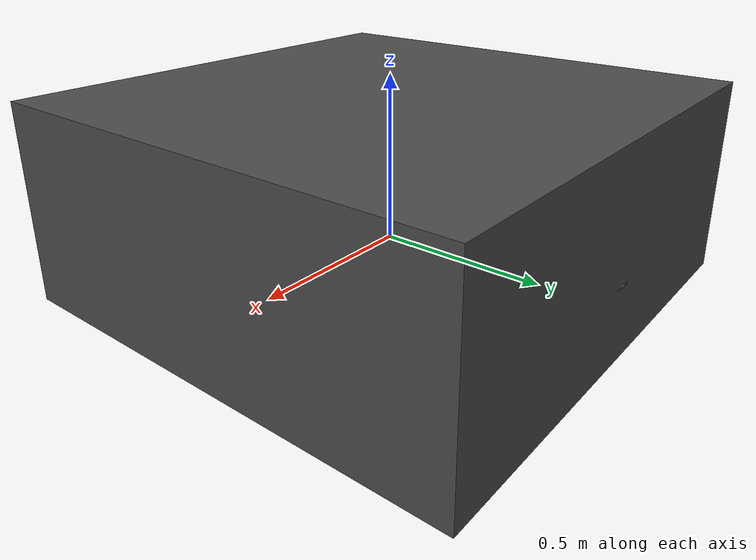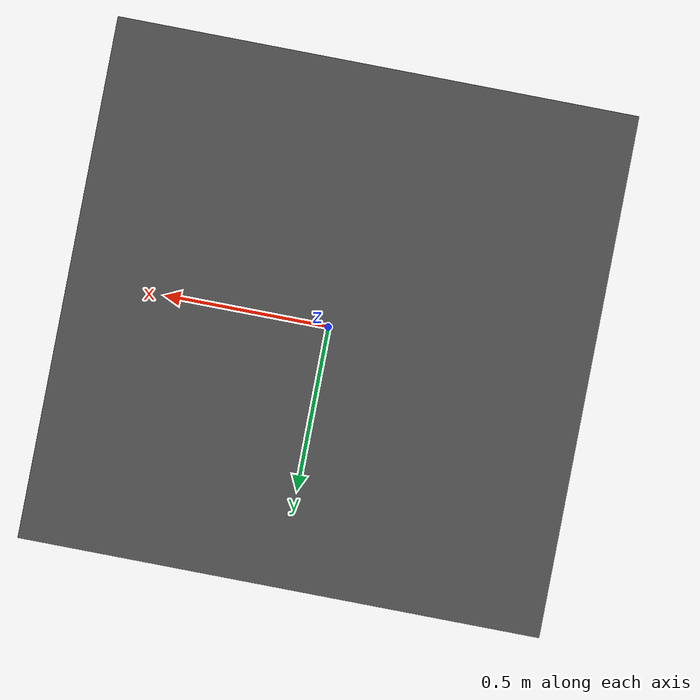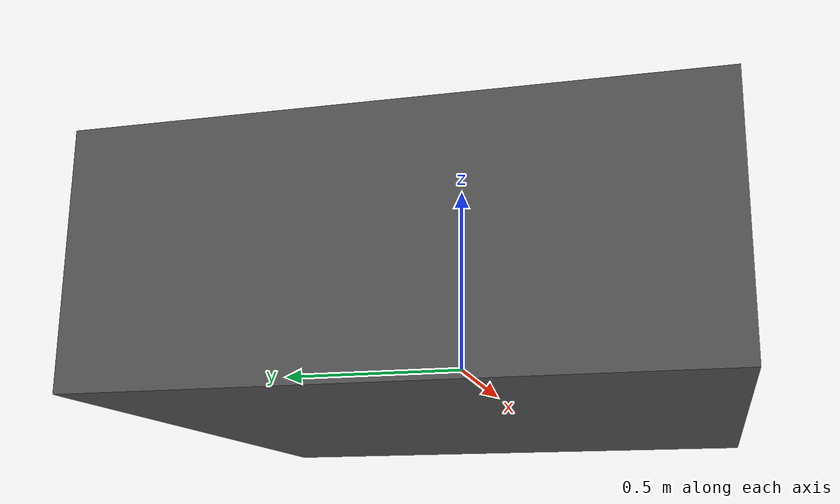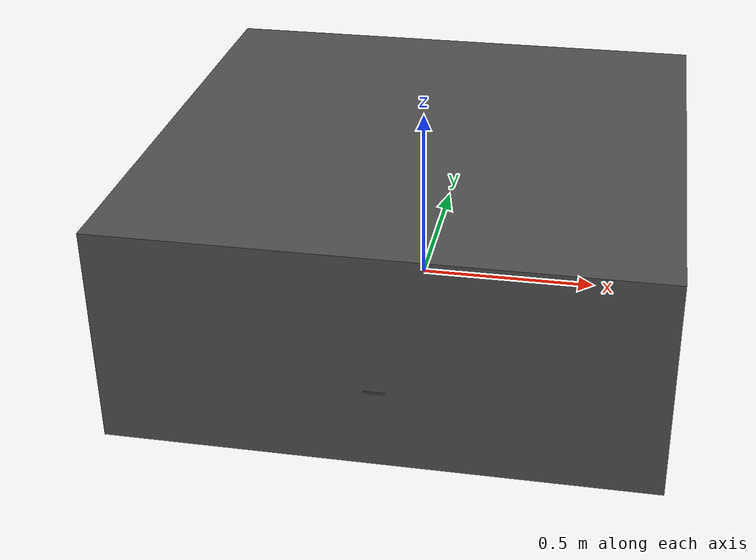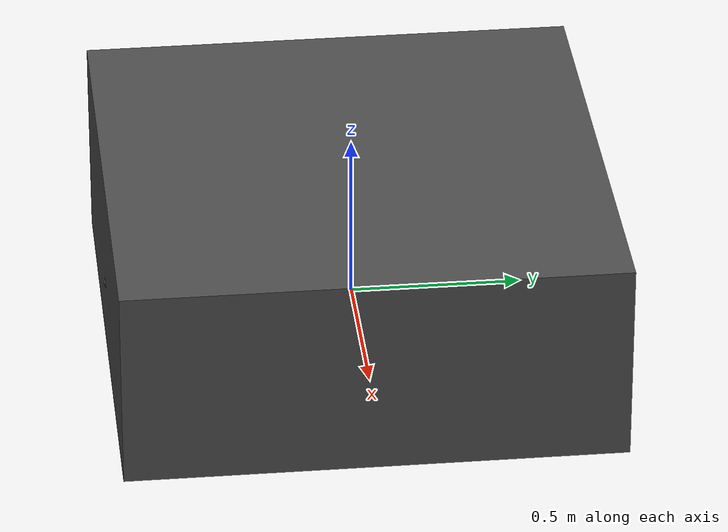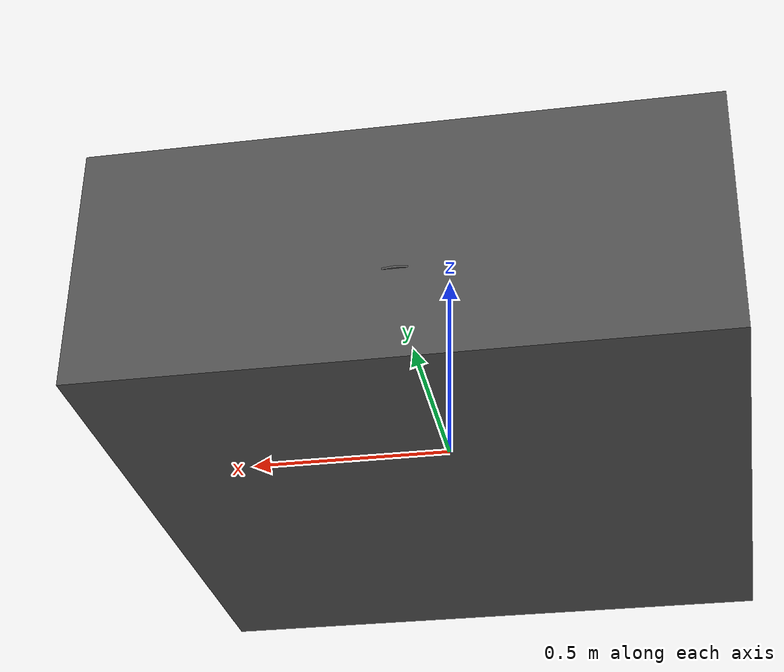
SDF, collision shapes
<?xml version='1.0'?>
<sdf version='1.7'>
  <model name='X6100'>
    <link name='base_link'>
      <inertial>
        <mass>9</mass>
        <inertia>
          <ixx>0.265865</ixx>
          <ixy>0</ixy>
          <ixz>0</ixz>
          <iyy>0.262636</iyy>
          <iyz>0</iyz>
          <izz>0.31363</izz>
        </inertia>
        <pose>0 0 0 0 -0 0</pose>
      </inertial>
      <pose>0 0 0 0 -0 0</pose>
      <gravity>1</gravity>
      <self_collide>0</self_collide>
      <enable_wind>0</enable_wind>
      <kinematic>0</kinematic>
      <visual name='base_link_visual'>
        <pose>0 0 0 0 -0 0</pose>
        <geometry>
          <mesh>
            <uri>/home/tmk/stalya/autopilot/public/px4-core/Tools/simulation/gazebo-classic/sitl_gazebo-classic/models/x6100/meshes/x6100_body.stl</uri>
            <scale>1 1 1</scale>
          </mesh>
        </geometry>
        <material>
          <script>
            <uri>file://media/materials/scripts/gazebo.material</uri>
            <name>Gazebo/DarkGrey</name>
          </script>
          <shader type='pixel'>
            <normal_map>__default__</normal_map>
          </shader>
          <lighting>1</lighting>
          <emissive>0.18 0.204 0.212 1</emissive>
          <ambient>0.18 0.204 0.212 1</ambient>
          <diffuse>0.18 0.204 0.212 1</diffuse>
          <specular>0.18 0.204 0.212 1</specular>
        </material>
        <transparency>0</transparency>
        <cast_shadows>1</cast_shadows>
      </visual>
      <collision name='base_link_collision'>
        <laser_retro>0</laser_retro>
        <max_contacts>10</max_contacts>
        <pose>0 0 0.15 0 -0 0</pose>
        <geometry>
          <box>
            <size>1.45 1.45 0.6</size>
          </box>
        </geometry>
        <surface>
          <friction>
            <ode>
              <mu>1</mu>
              <mu2>1</mu2>
              <fdir1>0 0 0</fdir1>
              <slip1>0</slip1>
              <slip2>0</slip2>
            </ode>
            <torsional>
              <coefficient>1</coefficient>
              <patch_radius>0</patch_radius>
              <surface_radius>0</surface_radius>
              <use_patch_radius>1</use_patch_radius>
              <ode>
                <slip>0</slip>
              </ode>
            </torsional>
          </friction>
          <bounce>
            <restitution_coefficient>0</restitution_coefficient>
            <threshold>1e+06</threshold>
          </bounce>
          <contact>
            <collide_without_contact>0</collide_without_contact>
            <collide_without_contact_bitmask>1</collide_without_contact_bitmask>
            <collide_bitmask>1</collide_bitmask>
            <ode>
              <soft_cfm>0</soft_cfm>
              <soft_erp>0.2</soft_erp>
              <kp>1e+13</kp>
              <kd>1</kd>
              <max_vel>0</max_vel>
              <min_depth>0.001</min_depth>
            </ode>
            <bullet>
              <split_impulse>1</split_impulse>
              <split_impulse_penetration_threshold>-0.01</split_impulse_penetration_threshold>
              <soft_cfm>0</soft_cfm>
              <soft_erp>0.2</soft_erp>
              <kp>1e+13</kp>
              <kd>1</kd>
            </bullet>
          </contact>
        </surface>
      </collision>
    </link>
    <link name='gps::link'>
      <pose>0 0 0 0 -0 0</pose>
      <inertial>
        <pose>0 0 0 0 -0 0</pose>
        <mass>0.015</mass>
        <inertia>
          <ixx>1e-05</ixx>
          <ixy>0</ixy>
          <ixz>0</ixz>
          <iyy>1e-05</iyy>
          <iyz>0</iyz>
          <izz>1e-05</izz>
        </inertia>
      </inertial>
      <sensor name='gps' type='gps'>
        <pose>0 0 0 0 -0 0</pose>
        <update_rate>5</update_rate>
        <always_on>1</always_on>
        <visualize>0</visualize>
        <plugin name='gps_plugin' filename='libgazebo_gps_plugin.so'>
          <robotNamespace/>
          <gpsNoise>1</gpsNoise>
          <gpsXYRandomWalk>2.0</gpsXYRandomWalk>
          <gpsZRandomWalk>4.0</gpsZRandomWalk>
          <gpsXYNoiseDensity>2.0e-4</gpsXYNoiseDensity>
          <gpsZNoiseDensity>4.0e-4</gpsZNoiseDensity>
          <gpsVXYNoiseDensity>0.2</gpsVXYNoiseDensity>
          <gpsVZNoiseDensity>0.4</gpsVZNoiseDensity>
        </plugin>
        <gps/>
      </sensor>
      <self_collide>0</self_collide>
      <enable_wind>0</enable_wind>
      <kinematic>0</kinematic>
      <visual name='visual'>
        <geometry>
          <cylinder>
            <radius>0.01</radius>
            <length>0.002</length>
          </cylinder>
        </geometry>
        <material>
          <script>
            <name>Gazebo/Black</name>
            <uri>__default__</uri>
          </script>
          <shader type='pixel'/>
        </material>
        <pose>0 0 0 0 -0 0</pose>
        <transparency>0</transparency>
        <cast_shadows>1</cast_shadows>
      </visual>
    </link>
    <link name='rotor_0'>
      <inertial>
        <mass>0.048</mass>
        <inertia>
          <ixx>6.5e-07</ixx>
          <ixy>0</ixy>
          <ixz>0</ixz>
          <iyy>0.00022348</iyy>
          <iyz>0</iyz>
          <izz>0.00022402</izz>
        </inertia>
        <pose>0 0 0 0 -0 0</pose>
      </inertial>
      <pose>0 -0.500335 0.07 0 -0 0</pose>
      <gravity>1</gravity>
      <self_collide>0</self_collide>
      <enable_wind>0</enable_wind>
      <kinematic>0</kinematic>
      <visual name='rotor_0_visual'>
        <pose>0 0 0 0 -0 0</pose>
        <geometry>
          <mesh>
            <uri>/home/tmk/stalya/autopilot/public/px4-core/Tools/simulation/gazebo-classic/sitl_gazebo-classic/models/x6100/meshes/x6100_prop1.stl</uri>
            <scale>1 1 1</scale>
          </mesh>
        </geometry>
        <material>
          <script>
            <uri>file://media/materials/scripts/gazebo.material</uri>
            <name>Gazebo/DarkGrey</name>
          </script>
          <shader type='vertex'>
            <normal_map>__default__</normal_map>
          </shader>
          <lighting>1</lighting>
          <emissive>0 0 0 1</emissive>
          <ambient>0 0 0 1</ambient>
          <diffuse>0 0 0 1</diffuse>
          <specular>0 0 0 1</specular>
        </material>
        <transparency>0</transparency>
        <cast_shadows>1</cast_shadows>
      </visual>
      <collision name='rotor_0_collision'>
        <laser_retro>0</laser_retro>
        <max_contacts>10</max_contacts>
        <pose>0 0 0 0 -0 0</pose>
        <geometry>
          <cylinder>
            <radius>0.2285</radius>
            <length>0.005</length>
          </cylinder>
        </geometry>
        <surface>
          <friction>
            <ode>
              <mu>1</mu>
              <mu2>1</mu2>
              <fdir1>0 0 0</fdir1>
              <slip1>0</slip1>
              <slip2>0</slip2>
            </ode>
            <torsional>
              <coefficient>1</coefficient>
              <patch_radius>0</patch_radius>
              <surface_radius>0</surface_radius>
              <use_patch_radius>1</use_patch_radius>
              <ode>
                <slip>0</slip>
              </ode>
            </torsional>
          </friction>
          <bounce>
            <restitution_coefficient>0</restitution_coefficient>
            <threshold>1e+06</threshold>
          </bounce>
          <contact>
            <collide_without_contact>0</collide_without_contact>
            <collide_without_contact_bitmask>1</collide_without_contact_bitmask>
            <collide_bitmask>1</collide_bitmask>
            <ode>
              <soft_cfm>0</soft_cfm>
              <soft_erp>0.2</soft_erp>
              <kp>1e+13</kp>
              <kd>1</kd>
              <max_vel>0</max_vel>
              <min_depth>0.001</min_depth>
            </ode>
            <bullet>
              <split_impulse>1</split_impulse>
              <split_impulse_penetration_threshold>-0.01</split_impulse_penetration_threshold>
              <soft_cfm>0</soft_cfm>
              <soft_erp>0.2</soft_erp>
              <kp>1e+13</kp>
              <kd>1</kd>
            </bullet>
          </contact>
        </surface>
      </collision>
    </link>
    <link name='rotor_1'>
      <inertial>
        <mass>0.048</mass>
        <inertia>
          <ixx>6.5e-07</ixx>
          <ixy>0</ixy>
          <ixz>0</ixz>
          <iyy>0.00022348</iyy>
          <iyz>0</iyz>
          <izz>0.00022402</izz>
        </inertia>
        <pose>0 0 0 0 -0 0</pose>
      </inertial>
      <pose>0 0.500335 0.07 0 -0 0</pose>
      <gravity>1</gravity>
      <self_collide>0</self_collide>
      <enable_wind>0</enable_wind>
      <kinematic>0</kinematic>
      <visual name='rotor_1_visual'>
        <pose>0 0 0 0 -0 0</pose>
        <geometry>
          <mesh>
            <uri>/home/tmk/stalya/autopilot/public/px4-core/Tools/simulation/gazebo-classic/sitl_gazebo-classic/models/x6100/meshes/x6100_prop2.stl</uri>
            <scale>1 1 1</scale>
          </mesh>
        </geometry>
        <material>
          <script>
            <uri>file://media/materials/scripts/gazebo.material</uri>
            <name>Gazebo/DarkGrey</name>
          </script>
          <shader type='vertex'>
            <normal_map>__default__</normal_map>
          </shader>
          <lighting>1</lighting>
          <emissive>0 0 0 1</emissive>
          <ambient>0 0 0 1</ambient>
          <diffuse>0 0 0 1</diffuse>
          <specular>0 0 0 1</specular>
        </material>
        <transparency>0</transparency>
        <cast_shadows>1</cast_shadows>
      </visual>
      <collision name='rotor_1_collision'>
        <laser_retro>0</laser_retro>
        <max_contacts>10</max_contacts>
        <pose>0 0 0 0 -0 0</pose>
        <geometry>
          <cylinder>
            <radius>0.2285</radius>
            <length>0.005</length>
          </cylinder>
        </geometry>
        <surface>
          <friction>
            <ode>
              <mu>1</mu>
              <mu2>1</mu2>
              <fdir1>0 0 0</fdir1>
              <slip1>0</slip1>
              <slip2>0</slip2>
            </ode>
            <torsional>
              <coefficient>1</coefficient>
              <patch_radius>0</patch_radius>
              <surface_radius>0</surface_radius>
              <use_patch_radius>1</use_patch_radius>
              <ode>
                <slip>0</slip>
              </ode>
            </torsional>
          </friction>
          <bounce>
            <restitution_coefficient>0</restitution_coefficient>
            <threshold>1e+06</threshold>
          </bounce>
          <contact>
            <collide_without_contact>0</collide_without_contact>
            <collide_without_contact_bitmask>1</collide_without_contact_bitmask>
            <collide_bitmask>1</collide_bitmask>
            <ode>
              <soft_cfm>0</soft_cfm>
              <soft_erp>0.2</soft_erp>
              <kp>1e+13</kp>
              <kd>1</kd>
              <max_vel>0</max_vel>
              <min_depth>0.001</min_depth>
            </ode>
            <bullet>
              <split_impulse>1</split_impulse>
              <split_impulse_penetration_threshold>-0.01</split_impulse_penetration_threshold>
              <soft_cfm>0</soft_cfm>
              <soft_erp>0.2</soft_erp>
              <kp>1e+13</kp>
              <kd>1</kd>
            </bullet>
          </contact>
        </surface>
      </collision>
    </link>
    <link name='rotor_2'>
      <inertial>
        <mass>0.048</mass>
        <inertia>
          <ixx>6.5e-07</ixx>
          <ixy>0</ixy>
          <ixz>0</ixz>
          <iyy>0.00022348</iyy>
          <iyz>0</iyz>
          <izz>0.00022402</izz>
        </inertia>
        <pose>0 0 0 0 -0 0</pose>
      </inertial>
      <pose>0.433303 0.250167 0.07 0 -0 0</pose>
      <gravity>1</gravity>
      <self_collide>0</self_collide>
      <enable_wind>0</enable_wind>
      <kinematic>0</kinematic>
      <visual name='rotor_2_visual'>
        <pose>-0.01 -0.01 0 0 -0 0</pose>
        <geometry>
          <mesh>
            <uri>/home/tmk/stalya/autopilot/public/px4-core/Tools/simulation/gazebo-classic/sitl_gazebo-classic/models/x6100/meshes/x6100_prop3.stl</uri>
            <scale>1 1 1</scale>
          </mesh>
        </geometry>
        <material>
          <script>
            <uri>file://media/materials/scripts/gazebo.material</uri>
            <name>Gazebo/DarkGrey</name>
          </script>
          <shader type='vertex'>
            <normal_map>__default__</normal_map>
          </shader>
          <lighting>1</lighting>
          <emissive>0 0 0 1</emissive>
          <ambient>0 0 0 1</ambient>
          <diffuse>0 0 0 1</diffuse>
          <specular>0 0 0 1</specular>
        </material>
        <transparency>0</transparency>
        <cast_shadows>1</cast_shadows>
      </visual>
      <collision name='rotor_2_collision'>
        <laser_retro>0</laser_retro>
        <max_contacts>10</max_contacts>
        <pose>0 0 0 0 -0 0</pose>
        <geometry>
          <cylinder>
            <radius>0.2285</radius>
            <length>0.005</length>
          </cylinder>
        </geometry>
        <surface>
          <friction>
            <ode>
              <mu>1</mu>
              <mu2>1</mu2>
              <fdir1>0 0 0</fdir1>
              <slip1>0</slip1>
              <slip2>0</slip2>
            </ode>
            <torsional>
              <coefficient>1</coefficient>
              <patch_radius>0</patch_radius>
              <surface_radius>0</surface_radius>
              <use_patch_radius>1</use_patch_radius>
              <ode>
                <slip>0</slip>
              </ode>
            </torsional>
          </friction>
          <bounce>
            <restitution_coefficient>0</restitution_coefficient>
            <threshold>1e+06</threshold>
          </bounce>
          <contact>
            <collide_without_contact>0</collide_without_contact>
            <collide_without_contact_bitmask>1</collide_without_contact_bitmask>
            <collide_bitmask>1</collide_bitmask>
            <ode>
              <soft_cfm>0</soft_cfm>
              <soft_erp>0.2</soft_erp>
              <kp>1e+13</kp>
              <kd>1</kd>
              <max_vel>0</max_vel>
              <min_depth>0.001</min_depth>
            </ode>
            <bullet>
              <split_impulse>1</split_impulse>
              <split_impulse_penetration_threshold>-0.01</split_impulse_penetration_threshold>
              <soft_cfm>0</soft_cfm>
              <soft_erp>0.2</soft_erp>
              <kp>1e+13</kp>
              <kd>1</kd>
            </bullet>
          </contact>
        </surface>
      </collision>
    </link>
    <link name='rotor_3'>
      <inertial>
        <mass>0.048</mass>
        <inertia>
          <ixx>6.5e-07</ixx>
          <ixy>0</ixy>
          <ixz>0</ixz>
          <iyy>0.00022348</iyy>
          <iyz>0</iyz>
          <izz>0.00022402</izz>
        </inertia>
        <pose>0 0 0 0 -0 0</pose>
      </inertial>
      <pose>-0.433303 -0.250167 0.07 0 -0 0</pose>
      <gravity>1</gravity>
      <self_collide>0</self_collide>
      <enable_wind>0</enable_wind>
      <kinematic>0</kinematic>
      <visual name='rotor_3_visual'>
        <pose>0 0 0 0 -0 0</pose>
        <geometry>
          <mesh>
            <uri>/home/tmk/stalya/autopilot/public/px4-core/Tools/simulation/gazebo-classic/sitl_gazebo-classic/models/x6100/meshes/x6100_prop4.stl</uri>
            <scale>1 1 1</scale>
          </mesh>
        </geometry>
        <material>
          <script>
            <uri>file://media/materials/scripts/gazebo.material</uri>
            <name>Gazebo/DarkGrey</name>
          </script>
          <shader type='vertex'>
            <normal_map>__default__</normal_map>
          </shader>
          <lighting>1</lighting>
          <emissive>0 0 0 1</emissive>
          <ambient>0 0 0 1</ambient>
          <diffuse>0 0 0 1</diffuse>
          <specular>0 0 0 1</specular>
        </material>
        <transparency>0</transparency>
        <cast_shadows>1</cast_shadows>
      </visual>
      <collision name='rotor_3_collision'>
        <laser_retro>0</laser_retro>
        <max_contacts>10</max_contacts>
        <pose>0 0 0 0 -0 0</pose>
        <geometry>
          <cylinder>
            <radius>0.2285</radius>
            <length>0.005</length>
          </cylinder>
        </geometry>
        <surface>
          <friction>
            <ode>
              <mu>1</mu>
              <mu2>1</mu2>
              <fdir1>0 0 0</fdir1>
              <slip1>0</slip1>
              <slip2>0</slip2>
            </ode>
            <torsional>
              <coefficient>1</coefficient>
              <patch_radius>0</patch_radius>
              <surface_radius>0</surface_radius>
              <use_patch_radius>1</use_patch_radius>
              <ode>
                <slip>0</slip>
              </ode>
            </torsional>
          </friction>
          <bounce>
            <restitution_coefficient>0</restitution_coefficient>
            <threshold>1e+06</threshold>
          </bounce>
          <contact>
            <collide_without_contact>0</collide_without_contact>
            <collide_without_contact_bitmask>1</collide_without_contact_bitmask>
            <collide_bitmask>1</collide_bitmask>
            <ode>
              <soft_cfm>0</soft_cfm>
              <soft_erp>0.2</soft_erp>
              <kp>1e+13</kp>
              <kd>1</kd>
              <max_vel>0</max_vel>
              <min_depth>0.001</min_depth>
            </ode>
            <bullet>
              <split_impulse>1</split_impulse>
              <split_impulse_penetration_threshold>-0.01</split_impulse_penetration_threshold>
              <soft_cfm>0</soft_cfm>
              <soft_erp>0.2</soft_erp>
              <kp>1e+13</kp>
              <kd>1</kd>
            </bullet>
          </contact>
        </surface>
      </collision>
    </link>
    <link name='rotor_4'>
      <inertial>
        <mass>0.048</mass>
        <inertia>
          <ixx>6.5e-07</ixx>
          <ixy>0</ixy>
          <ixz>0</ixz>
          <iyy>0.00022348</iyy>
          <iyz>0</iyz>
          <izz>0.00022402</izz>
        </inertia>
        <pose>0 0 0 0 -0 0</pose>
      </inertial>
      <pose>0.433303 -0.250167 0.07 0 -0 0</pose>
      <gravity>1</gravity>
      <self_collide>0</self_collide>
      <enable_wind>0</enable_wind>
      <kinematic>0</kinematic>
      <visual name='rotor_4_visual'>
        <pose>0 0.01 0 0 -0 0</pose>
        <geometry>
          <mesh>
            <uri>/home/tmk/stalya/autopilot/public/px4-core/Tools/simulation/gazebo-classic/sitl_gazebo-classic/models/x6100/meshes/x6100_prop5.stl</uri>
            <scale>1 1 1</scale>
          </mesh>
        </geometry>
        <material>
          <script>
            <uri>file://media/materials/scripts/gazebo.material</uri>
            <name>Gazebo/DarkGrey</name>
          </script>
          <shader type='vertex'>
            <normal_map>__default__</normal_map>
          </shader>
          <lighting>1</lighting>
          <emissive>0 0 0 1</emissive>
          <ambient>0 0 0 1</ambient>
          <diffuse>0 0 0 1</diffuse>
          <specular>0 0 0 1</specular>
        </material>
        <transparency>0</transparency>
        <cast_shadows>1</cast_shadows>
      </visual>
      <collision name='rotor_4_collision'>
        <laser_retro>0</laser_retro>
        <max_contacts>10</max_contacts>
        <pose>0 0 0 0 -0 0</pose>
        <geometry>
          <cylinder>
            <radius>0.2285</radius>
            <length>0.005</length>
          </cylinder>
        </geometry>
        <surface>
          <friction>
            <ode>
              <mu>1</mu>
              <mu2>1</mu2>
              <fdir1>0 0 0</fdir1>
              <slip1>0</slip1>
              <slip2>0</slip2>
            </ode>
            <torsional>
              <coefficient>1</coefficient>
              <patch_radius>0</patch_radius>
              <surface_radius>0</surface_radius>
              <use_patch_radius>1</use_patch_radius>
              <ode>
                <slip>0</slip>
              </ode>
            </torsional>
          </friction>
          <bounce>
            <restitution_coefficient>0</restitution_coefficient>
            <threshold>1e+06</threshold>
          </bounce>
          <contact>
            <collide_without_contact>0</collide_without_contact>
            <collide_without_contact_bitmask>1</collide_without_contact_bitmask>
            <collide_bitmask>1</collide_bitmask>
            <ode>
              <soft_cfm>0</soft_cfm>
              <soft_erp>0.2</soft_erp>
              <kp>1e+13</kp>
              <kd>1</kd>
              <max_vel>0</max_vel>
              <min_depth>0.001</min_depth>
            </ode>
            <bullet>
              <split_impulse>1</split_impulse>
              <split_impulse_penetration_threshold>-0.01</split_impulse_penetration_threshold>
              <soft_cfm>0</soft_cfm>
              <soft_erp>0.2</soft_erp>
              <kp>1e+13</kp>
              <kd>1</kd>
            </bullet>
          </contact>
        </surface>
      </collision>
    </link>
    <link name='rotor_5'>
      <inertial>
        <mass>0.048</mass>
        <inertia>
          <ixx>6.5e-07</ixx>
          <ixy>0</ixy>
          <ixz>0</ixz>
          <iyy>0.00022348</iyy>
          <iyz>0</iyz>
          <izz>0.00022402</izz>
        </inertia>
        <pose>0 0 0 0 -0 0</pose>
      </inertial>
      <pose>-0.433303 0.250167 0.07 0 -0 0</pose>
      <gravity>1</gravity>
      <self_collide>0</self_collide>
      <enable_wind>0</enable_wind>
      <kinematic>0</kinematic>
      <visual name='rotor_5_visual'>
        <pose>0 0 0 0 -0 0</pose>
        <geometry>
          <mesh>
            <uri>/home/tmk/stalya/autopilot/public/px4-core/Tools/simulation/gazebo-classic/sitl_gazebo-classic/models/x6100/meshes/x6100_prop6.stl</uri>
            <scale>1 1 1</scale>
          </mesh>
        </geometry>
        <material>
          <script>
            <uri>file://media/materials/scripts/gazebo.material</uri>
            <name>Gazebo/DarkGrey</name>
          </script>
          <shader type='vertex'>
            <normal_map>__default__</normal_map>
          </shader>
          <ambient>0 0 0 1</ambient>
          <diffuse>0 0 0 1</diffuse>
          <specular>0 0 0 1</specular>
          <emissive>0 0 0 1</emissive>
          <lighting>1</lighting>
        </material>
        <transparency>0</transparency>
        <cast_shadows>1</cast_shadows>
      </visual>
      <collision name='rotor_5_collision'>
        <laser_retro>0</laser_retro>
        <max_contacts>10</max_contacts>
        <pose>0 0 0 0 -0 0</pose>
        <geometry>
          <cylinder>
            <radius>0.2285</radius>
            <length>0.005</length>
          </cylinder>
        </geometry>
        <surface>
          <friction>
            <ode>
              <mu>1</mu>
              <mu2>1</mu2>
              <fdir1>0 0 0</fdir1>
              <slip1>0</slip1>
              <slip2>0</slip2>
            </ode>
            <torsional>
              <coefficient>1</coefficient>
              <patch_radius>0</patch_radius>
              <surface_radius>0</surface_radius>
              <use_patch_radius>1</use_patch_radius>
              <ode>
                <slip>0</slip>
              </ode>
            </torsional>
          </friction>
          <bounce>
            <restitution_coefficient>0</restitution_coefficient>
            <threshold>1e+06</threshold>
          </bounce>
          <contact>
            <collide_without_contact>0</collide_without_contact>
            <collide_without_contact_bitmask>1</collide_without_contact_bitmask>
            <collide_bitmask>1</collide_bitmask>
            <ode>
              <soft_cfm>0</soft_cfm>
              <soft_erp>0.2</soft_erp>
              <kp>1e+13</kp>
              <kd>1</kd>
              <max_vel>0</max_vel>
              <min_depth>0.001</min_depth>
            </ode>
            <bullet>
              <split_impulse>1</split_impulse>
              <split_impulse_penetration_threshold>-0.01</split_impulse_penetration_threshold>
              <soft_cfm>0</soft_cfm>
              <soft_erp>0.2</soft_erp>
              <kp>1e+13</kp>
              <kd>1</kd>
            </bullet>
          </contact>
        </surface>
      </collision>
    </link>
    <link name='x6100/imu_link'>
      <pose>0 0 0 0 -0 0</pose>
      <inertial>
        <pose>0 0 0 0 -0 0</pose>
        <mass>0.015</mass>
        <inertia>
          <ixx>1e-05</ixx>
          <ixy>0</ixy>
          <ixz>0</ixz>
          <iyy>1e-05</iyy>
          <iyz>0</iyz>
          <izz>1e-05</izz>
        </inertia>
      </inertial>
      <gravity>1</gravity>
      <self_collide>0</self_collide>
      <enable_wind>0</enable_wind>
      <kinematic>0</kinematic>
    </link>
    <joint name='gps_joint' type='fixed'>
      <parent>base_link</parent>
      <child>gps::link</child>
      <pose>0 0 0 0 -0 0</pose>
      <physics>
        <ode>
          <limit>
            <cfm>0</cfm>
            <erp>0.2</erp>
          </limit>
          <suspension>
            <cfm>0</cfm>
            <erp>0.2</erp>
          </suspension>
        </ode>
      </physics>
    </joint>
    <joint name='rotor_0_joint' type='revolute'>
      <parent>base_link</parent>
      <child>rotor_0</child>
      <pose>0 0 0 0 -0 0</pose>
      <axis>
        <xyz>0 0 1</xyz>
        <limit>
          <lower>-1e+16</lower>
          <upper>1e+16</upper>
          <effort>10</effort>
          <velocity>-1</velocity>
        </limit>
        <dynamics>
          <spring_reference>0</spring_reference>
          <spring_stiffness>0</spring_stiffness>
          <damping>0</damping>
          <friction>0</friction>
        </dynamics>
      </axis>
      <physics>
        <ode>
          <limit>
            <cfm>0</cfm>
            <erp>0.2</erp>
          </limit>
          <suspension>
            <cfm>0</cfm>
            <erp>0.2</erp>
          </suspension>
        </ode>
      </physics>
    </joint>
    <joint name='rotor_1_joint' type='revolute'>
      <parent>base_link</parent>
      <child>rotor_1</child>
      <pose>0 0 0 0 -0 0</pose>
      <axis>
        <xyz>0 0 1</xyz>
        <limit>
          <lower>-1e+16</lower>
          <upper>1e+16</upper>
          <effort>10</effort>
          <velocity>-1</velocity>
        </limit>
        <dynamics>
          <spring_reference>0</spring_reference>
          <spring_stiffness>0</spring_stiffness>
          <damping>0</damping>
          <friction>0</friction>
        </dynamics>
      </axis>
      <physics>
        <ode>
          <limit>
            <cfm>0</cfm>
            <erp>0.2</erp>
          </limit>
          <suspension>
            <cfm>0</cfm>
            <erp>0.2</erp>
          </suspension>
        </ode>
      </physics>
    </joint>
    <joint name='rotor_2_joint' type='revolute'>
      <parent>base_link</parent>
      <child>rotor_2</child>
      <pose>0 0 0 0 -0 0</pose>
      <axis>
        <xyz>0 0 1</xyz>
        <limit>
          <lower>-1e+16</lower>
          <upper>1e+16</upper>
          <effort>10</effort>
          <velocity>-1</velocity>
        </limit>
        <dynamics>
          <spring_reference>0</spring_reference>
          <spring_stiffness>0</spring_stiffness>
          <damping>0</damping>
          <friction>0</friction>
        </dynamics>
      </axis>
      <physics>
        <ode>
          <limit>
            <cfm>0</cfm>
            <erp>0.2</erp>
          </limit>
          <suspension>
            <cfm>0</cfm>
            <erp>0.2</erp>
          </suspension>
        </ode>
      </physics>
    </joint>
    <joint name='rotor_3_joint' type='revolute'>
      <parent>base_link</parent>
      <child>rotor_3</child>
      <pose>0 0 0 0 -0 0</pose>
      <axis>
        <xyz>0 0 1</xyz>
        <limit>
          <lower>-1e+16</lower>
          <upper>1e+16</upper>
          <effort>10</effort>
          <velocity>-1</velocity>
        </limit>
        <dynamics>
          <spring_reference>0</spring_reference>
          <spring_stiffness>0</spring_stiffness>
          <damping>0</damping>
          <friction>0</friction>
        </dynamics>
      </axis>
      <physics>
        <ode>
          <limit>
            <cfm>0</cfm>
            <erp>0.2</erp>
          </limit>
          <suspension>
            <cfm>0</cfm>
            <erp>0.2</erp>
          </suspension>
        </ode>
      </physics>
    </joint>
    <joint name='rotor_4_joint' type='revolute'>
      <parent>base_link</parent>
      <child>rotor_4</child>
      <pose>0 0 0 0 -0 0</pose>
      <axis>
        <xyz>0 0 1</xyz>
        <limit>
          <lower>-1e+16</lower>
          <upper>1e+16</upper>
          <effort>10</effort>
          <velocity>-1</velocity>
        </limit>
        <dynamics>
          <spring_reference>0</spring_reference>
          <spring_stiffness>0</spring_stiffness>
          <damping>0</damping>
          <friction>0</friction>
        </dynamics>
      </axis>
      <physics>
        <ode>
          <limit>
            <cfm>0</cfm>
            <erp>0.2</erp>
          </limit>
          <suspension>
            <cfm>0</cfm>
            <erp>0.2</erp>
          </suspension>
        </ode>
      </physics>
    </joint>
    <joint name='rotor_5_joint' type='revolute'>
      <parent>base_link</parent>
      <child>rotor_5</child>
      <pose>0 0 0 0 -0 0</pose>
      <axis>
        <xyz>0 0 1</xyz>
        <limit>
          <lower>-1e+16</lower>
          <upper>1e+16</upper>
          <effort>10</effort>
          <velocity>-1</velocity>
        </limit>
        <dynamics>
          <spring_reference>0</spring_reference>
          <spring_stiffness>0</spring_stiffness>
          <damping>0</damping>
          <friction>0</friction>
        </dynamics>
      </axis>
      <physics>
        <ode>
          <limit>
            <cfm>0</cfm>
            <erp>0.2</erp>
          </limit>
          <suspension>
            <cfm>0</cfm>
            <erp>0.2</erp>
          </suspension>
        </ode>
      </physics>
    </joint>
    <joint name='x6100/imu_joint' type='revolute'>
      <parent>base_link</parent>
      <child>x6100/imu_link</child>
      <pose>0 0 0 0 -0 0</pose>
      <axis>
        <xyz>1 0 0</xyz>
        <limit>
          <lower>0</lower>
          <upper>0</upper>
          <effort>0</effort>
          <velocity>0</velocity>
        </limit>
        <dynamics>
          <spring_reference>0</spring_reference>
          <spring_stiffness>0</spring_stiffness>
          <damping>0</damping>
          <friction>0</friction>
        </dynamics>
      </axis>
      <physics>
        <ode>
          <limit>
            <cfm>0</cfm>
            <erp>0.2</erp>
          </limit>
          <suspension>
            <cfm>0</cfm>
            <erp>0.2</erp>
          </suspension>
        </ode>
      </physics>
    </joint>
    <static>0</static>
    <allow_auto_disable>1</allow_auto_disable>

    <plugin name='back_left_motor_model' filename='libgazebo_motor_model.so'>
      <robotNamespace/>
      <jointName>rotor_0_joint</jointName>
      <linkName>rotor_0</linkName>
      <turningDirection>ccw</turningDirection>
      <timeConstantUp>0.0125</timeConstantUp>
      <timeConstantDown>0.025</timeConstantDown>
      <maxRotVelocity>800</maxRotVelocity>
      <motorConstant>6.13125e-05</motorConstant>
      <momentConstant>0.03</momentConstant>
      <commandSubTopic>/gazebo/command/motor_speed</commandSubTopic>
      <motorNumber>0</motorNumber>
      <rotorDragCoefficient>0.046</rotorDragCoefficient>
      <rollingMomentCoefficient>1e-06</rollingMomentCoefficient>
      <motorSpeedPubTopic>/motor_speed/0</motorSpeedPubTopic>
      <rotorVelocitySlowdownSim>10</rotorVelocitySlowdownSim>
    </plugin>

    <plugin name='back_left_motor_model' filename='libgazebo_motor_model.so'>
      <robotNamespace/>
      <jointName>rotor_1_joint</jointName>
      <linkName>rotor_1</linkName>
      <turningDirection>ccw</turningDirection>
      <timeConstantUp>0.0125</timeConstantUp>
      <timeConstantDown>0.025</timeConstantDown>
      <maxRotVelocity>800</maxRotVelocity>
      <motorConstant>6.13125e-05</motorConstant>
      <momentConstant>0.03</momentConstant>
      <commandSubTopic>/gazebo/command/motor_speed</commandSubTopic>
      <motorNumber>1</motorNumber>
      <rotorDragCoefficient>0.046</rotorDragCoefficient>
      <rollingMomentCoefficient>1e-06</rollingMomentCoefficient>
      <motorSpeedPubTopic>/motor_speed/1</motorSpeedPubTopic>
      <rotorVelocitySlowdownSim>10</rotorVelocitySlowdownSim>
    </plugin>

    <plugin name='back_left_motor_model' filename='libgazebo_motor_model.so'>
      <robotNamespace/>
      <jointName>rotor_4_joint</jointName>
      <linkName>rotor_4</linkName>
      <turningDirection>ccw</turningDirection>
      <timeConstantUp>0.0125</timeConstantUp>
      <timeConstantDown>0.025</timeConstantDown>
      <maxRotVelocity>800</maxRotVelocity>
      <motorConstant>6.13125e-05</motorConstant>
      <momentConstant>0.03</momentConstant>
      <commandSubTopic>/gazebo/command/motor_speed</commandSubTopic>
      <motorNumber>4</motorNumber>
      <rotorDragCoefficient>0.046</rotorDragCoefficient>
      <rollingMomentCoefficient>1e-06</rollingMomentCoefficient>
      <motorSpeedPubTopic>/motor_speed/4</motorSpeedPubTopic>
      <rotorVelocitySlowdownSim>10</rotorVelocitySlowdownSim>
    </plugin>
    <plugin name='back_right_motor_model' filename='libgazebo_motor_model.so'>
      <robotNamespace/>
      <jointName>rotor_2_joint</jointName>
      <linkName>rotor_2</linkName>
      <turningDirection>cw</turningDirection>
      <timeConstantUp>0.0125</timeConstantUp>
      <timeConstantDown>0.025</timeConstantDown>
      <maxRotVelocity>800</maxRotVelocity>
      <motorConstant>6.13125e-05</motorConstant>
      <momentConstant>0.03</momentConstant>
      <commandSubTopic>/gazebo/command/motor_speed</commandSubTopic>
      <motorNumber>2</motorNumber>
      <rotorDragCoefficient>0.046</rotorDragCoefficient>
      <rollingMomentCoefficient>1e-06</rollingMomentCoefficient>
      <motorSpeedPubTopic>/motor_speed/2</motorSpeedPubTopic>
      <rotorVelocitySlowdownSim>10</rotorVelocitySlowdownSim>
    </plugin>
    <plugin name='barometer_plugin' filename='libgazebo_barometer_plugin.so'>
      <robotNamespace/>
      <pubRate>50</pubRate>
      <baroTopic>/baro</baroTopic>
    </plugin>
    <plugin name='front_left_motor_model' filename='libgazebo_motor_model.so'>
      <robotNamespace/>
      <jointName>rotor_3_joint</jointName>
      <linkName>rotor_3</linkName>
      <turningDirection>ccw</turningDirection>
      <timeConstantUp>0.0125</timeConstantUp>
      <timeConstantDown>0.025</timeConstantDown>
      <maxRotVelocity>800</maxRotVelocity>
      <motorConstant>6.13125e-05</motorConstant>
      <momentConstant>0.03</momentConstant>
      <commandSubTopic>/gazebo/command/motor_speed</commandSubTopic>
      <motorNumber>3</motorNumber>
      <rotorDragCoefficient>0.046</rotorDragCoefficient>
      <rollingMomentCoefficient>1e-06</rollingMomentCoefficient>
      <motorSpeedPubTopic>/motor_speed/3</motorSpeedPubTopic>
      <rotorVelocitySlowdownSim>10</rotorVelocitySlowdownSim>
    </plugin>
    <plugin name='front_right_motor_model' filename='libgazebo_motor_model.so'>
      <robotNamespace/>
      <jointName>rotor_5_joint</jointName>
      <linkName>rotor_5</linkName>
      <turningDirection>cw</turningDirection>
      <timeConstantUp>0.0125</timeConstantUp>
      <timeConstantDown>0.025</timeConstantDown>
      <maxRotVelocity>800</maxRotVelocity>
      <motorConstant>6.13125e-05</motorConstant>
      <momentConstant>0.03</momentConstant>
      <commandSubTopic>/gazebo/command/motor_speed</commandSubTopic>
      <motorNumber>5</motorNumber>
      <rotorDragCoefficient>0.046</rotorDragCoefficient>
      <rollingMomentCoefficient>1e-06</rollingMomentCoefficient>
      <motorSpeedPubTopic>/motor_speed/5</motorSpeedPubTopic>
      <rotorVelocitySlowdownSim>10</rotorVelocitySlowdownSim>
    </plugin>
    <plugin name='gazebo_imu_plugin' filename='libgazebo_imu_plugin.so'>
      <robotNamespace/>
      <linkName>x6100/imu_link</linkName>
      <imuTopic>/imu</imuTopic>
      <gyroscopeNoiseDensity>0.0003394</gyroscopeNoiseDensity>
      <gyroscopeRandomWalk>3.8785e-05</gyroscopeRandomWalk>
      <gyroscopeBiasCorrelationTime>1000.0</gyroscopeBiasCorrelationTime>
      <gyroscopeTurnOnBiasSigma>0.0087</gyroscopeTurnOnBiasSigma>
      <accelerometerNoiseDensity>0.004</accelerometerNoiseDensity>
      <accelerometerRandomWalk>0.006</accelerometerRandomWalk>
      <accelerometerBiasCorrelationTime>300.0</accelerometerBiasCorrelationTime>
      <accelerometerTurnOnBiasSigma>0.196</accelerometerTurnOnBiasSigma>
    </plugin>
    <plugin name='groundtruth_plugin' filename='libgazebo_groundtruth_plugin.so'>
      <robotNamespace/>
    </plugin>
    <plugin name='magnetometer_plugin' filename='libgazebo_magnetometer_plugin.so'>
      <robotNamespace/>
      <pubRate>100</pubRate>
      <noiseDensity>0.0004</noiseDensity>
      <randomWalk>6.4e-06</randomWalk>
      <biasCorrelationTime>600</biasCorrelationTime>
      <magTopic>/mag</magTopic>
    </plugin>
    <plugin name='mavlink_interface' filename='libgazebo_mavlink_interface.so'>
      <robotNamespace/>
      <imuSubTopic>/imu</imuSubTopic>
      <magSubTopic>/mag</magSubTopic>
      <baroSubTopic>/baro</baroSubTopic>
      <mavlink_addr>INADDR_ANY</mavlink_addr>
      <mavlink_tcp_port>4560</mavlink_tcp_port>
      <mavlink_udp_port>14560</mavlink_udp_port>
      <serialEnabled>0</serialEnabled>
      <serialDevice>/dev/ttyACM0</serialDevice>
      <baudRate>921600</baudRate>
      <qgc_addr>INADDR_ANY</qgc_addr>
      <qgc_udp_port>14550</qgc_udp_port>
      <sdk_addr>INADDR_ANY</sdk_addr>
      <sdk_udp_port>14540</sdk_udp_port>
      <hil_mode>0</hil_mode>
      <hil_state_level>0</hil_state_level>
      <enable_lockstep>1</enable_lockstep>
      <use_tcp>1</use_tcp>
      <motorSpeedCommandPubTopic>/gazebo/command/motor_speed</motorSpeedCommandPubTopic>
      <control_channels>
        <channel name='rotor0'>
          <input_index>0</input_index>
          <input_offset>0</input_offset>
          <input_scaling>1500</input_scaling>
          <zero_position_disarmed>0</zero_position_disarmed>
          <zero_position_armed>100</zero_position_armed>
          <joint_control_type>velocity</joint_control_type>
        </channel>
        <channel name='rotor1'>
          <input_index>1</input_index>
          <input_offset>0</input_offset>
          <input_scaling>1500</input_scaling>
          <zero_position_disarmed>0</zero_position_disarmed>
          <zero_position_armed>100</zero_position_armed>
          <joint_control_type>velocity</joint_control_type>
        </channel>
        <channel name='rotor2'>
          <input_index>2</input_index>
          <input_offset>0</input_offset>
          <input_scaling>1500</input_scaling>
          <zero_position_disarmed>0</zero_position_disarmed>
          <zero_position_armed>100</zero_position_armed>
          <joint_control_type>velocity</joint_control_type>
        </channel>
        <channel name='rotor3'>
          <input_index>3</input_index>
          <input_offset>0</input_offset>
          <input_scaling>1500</input_scaling>
          <zero_position_disarmed>0</zero_position_disarmed>
          <zero_position_armed>100</zero_position_armed>
          <joint_control_type>velocity</joint_control_type>
        </channel>
        <channel name='rotor4'>
          <input_index>4</input_index>
          <input_offset>0</input_offset>
          <input_scaling>1500</input_scaling>
          <zero_position_disarmed>0</zero_position_disarmed>
          <zero_position_armed>100</zero_position_armed>
          <joint_control_type>velocity</joint_control_type>
        </channel>
        <channel name='rotor5'>
          <input_index>5</input_index>
          <input_offset>0</input_offset>
          <input_scaling>1500</input_scaling>
          <zero_position_disarmed>0</zero_position_disarmed>
          <zero_position_armed>100</zero_position_armed>
          <joint_control_type>velocity</joint_control_type>
        </channel>
      </control_channels>
    </plugin>
    <plugin name='rosbag' filename='libgazebo_multirotor_base_plugin.so'>
      <robotNamespace/>
      <linkName>base_link</linkName>
      <rotorVelocitySlowdownSim>10</rotorVelocitySlowdownSim>
    </plugin>
  </model>
</sdf>
